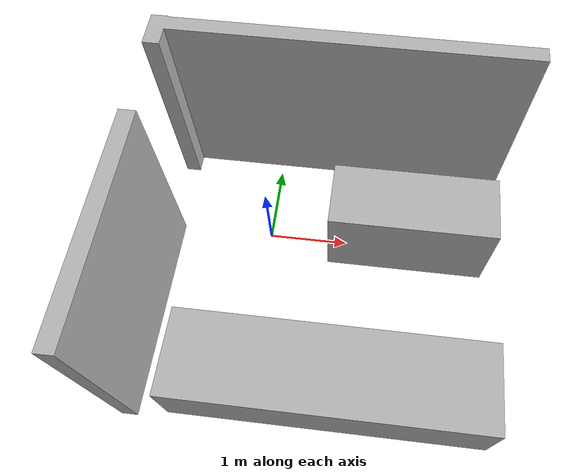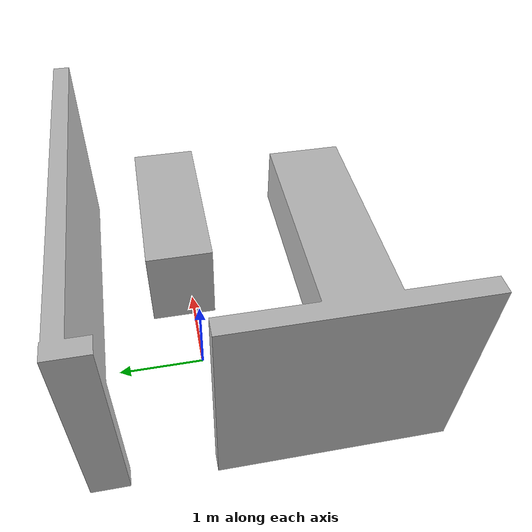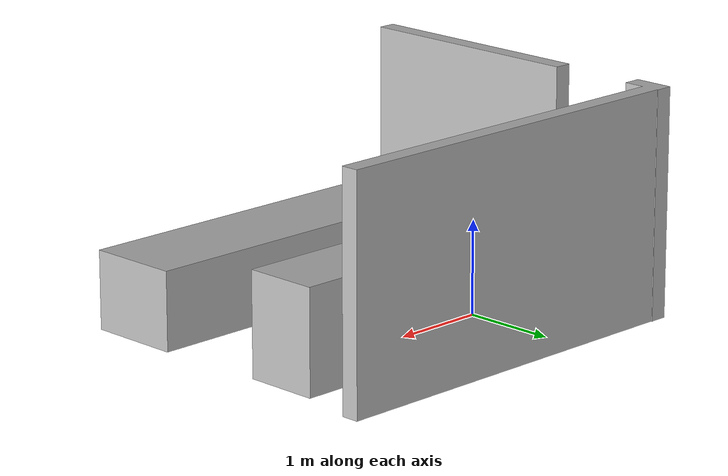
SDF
<?xml version='1.0'?>
<sdf version='1.6'>
  <model name='box_restaurant'>
    <link name='link_1'>
         <visual name='visual'>
        <pose frame=''>0 0 0 0 -0 0</pose>
        <geometry>
          <mesh>
            <uri>model://box_restaurant/meshes/box_restaurant.dae</uri>
            <scale>0.1 0.1 0.1</scale>
          </mesh>
        </geometry>
        <cast_shadows>0</cast_shadows>
        <transparency>0</transparency>
      </visual>
      <collision name='collision'>
        <laser_retro>0</laser_retro>
        <max_contacts>10</max_contacts>
        <pose frame=''>0 0 0 0 -0 0</pose>
        <geometry>
          <mesh>
            <uri>model://box_restaurant/meshes/box_restaurant.dae</uri>
            <scale>0.1 0.1 0.1</scale>
          </mesh>
        </geometry>
     </collision>
    </link>

    <static>1</static>
    <allow_auto_disable>1</allow_auto_disable>
  </model>
</sdf>
